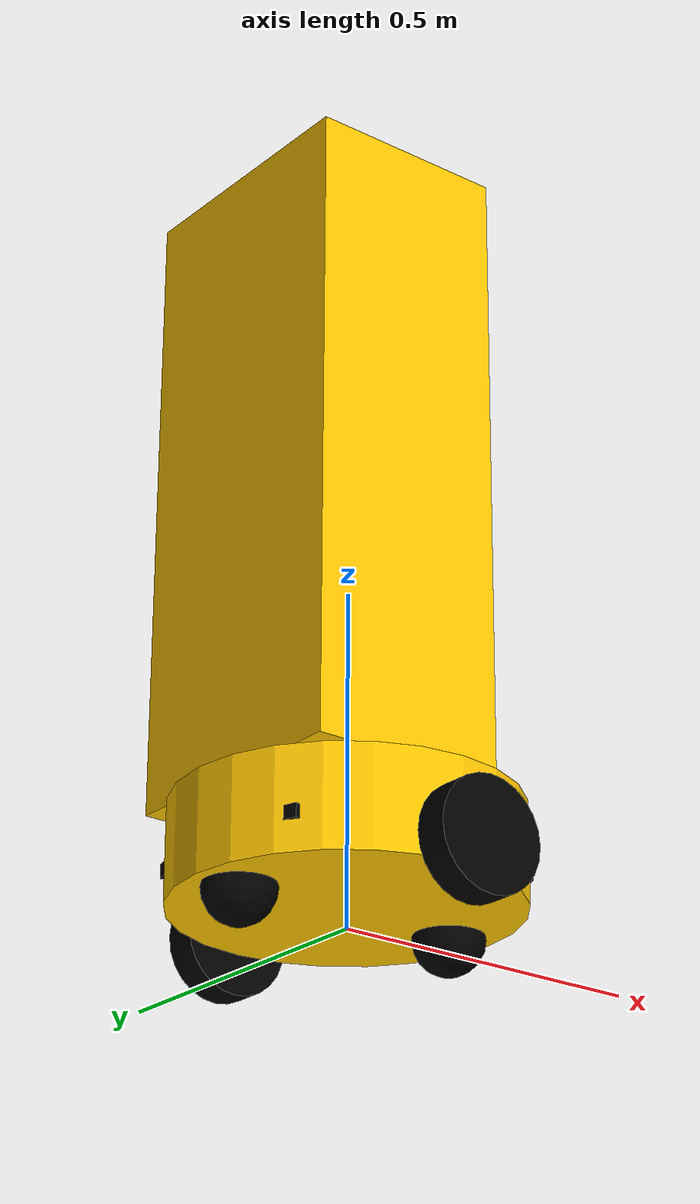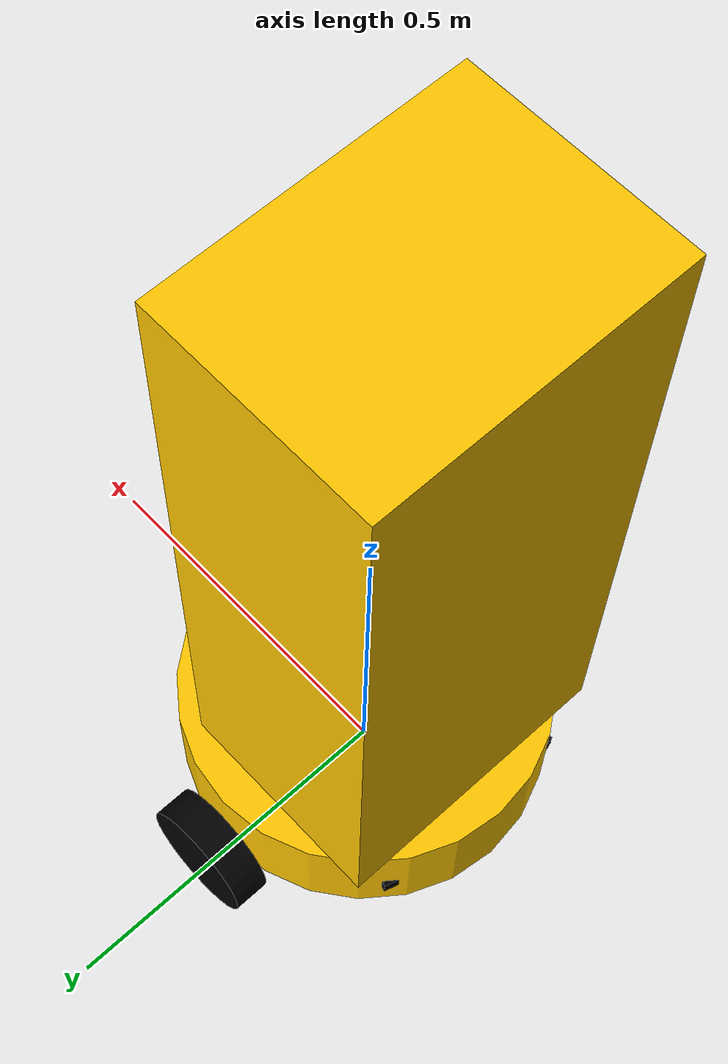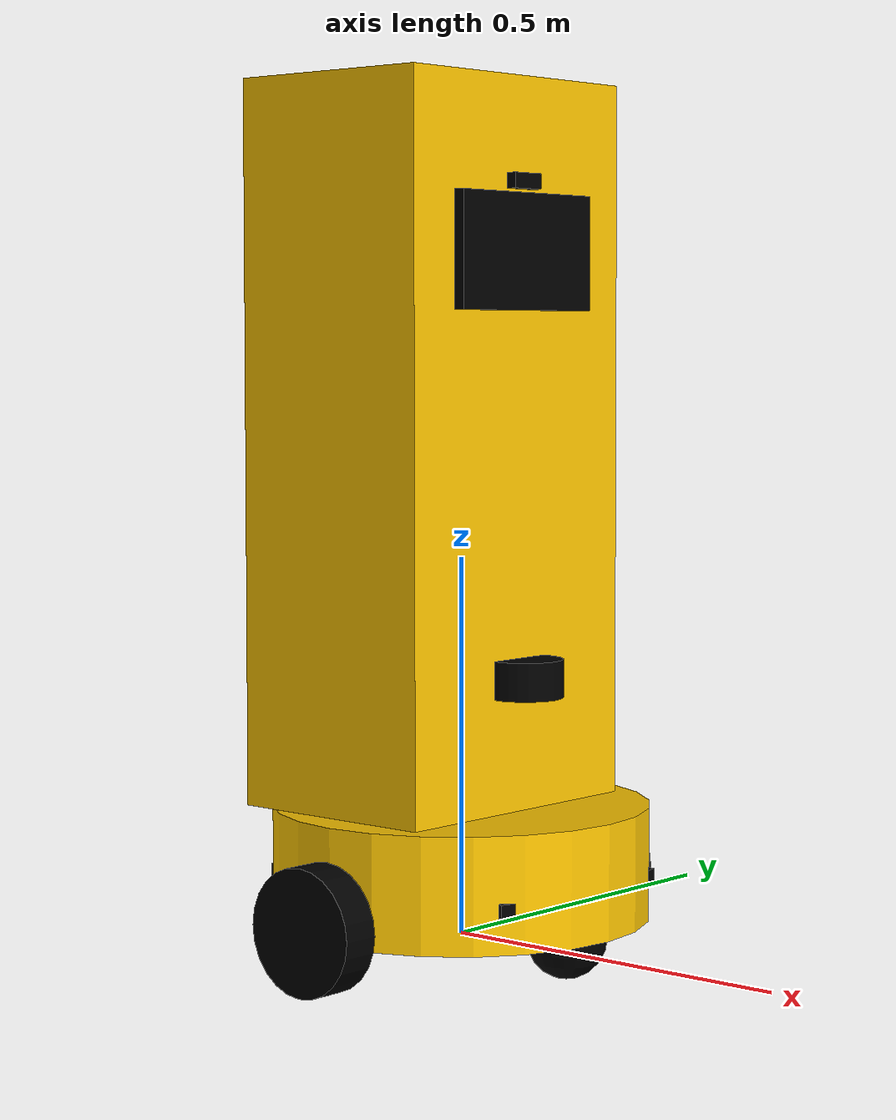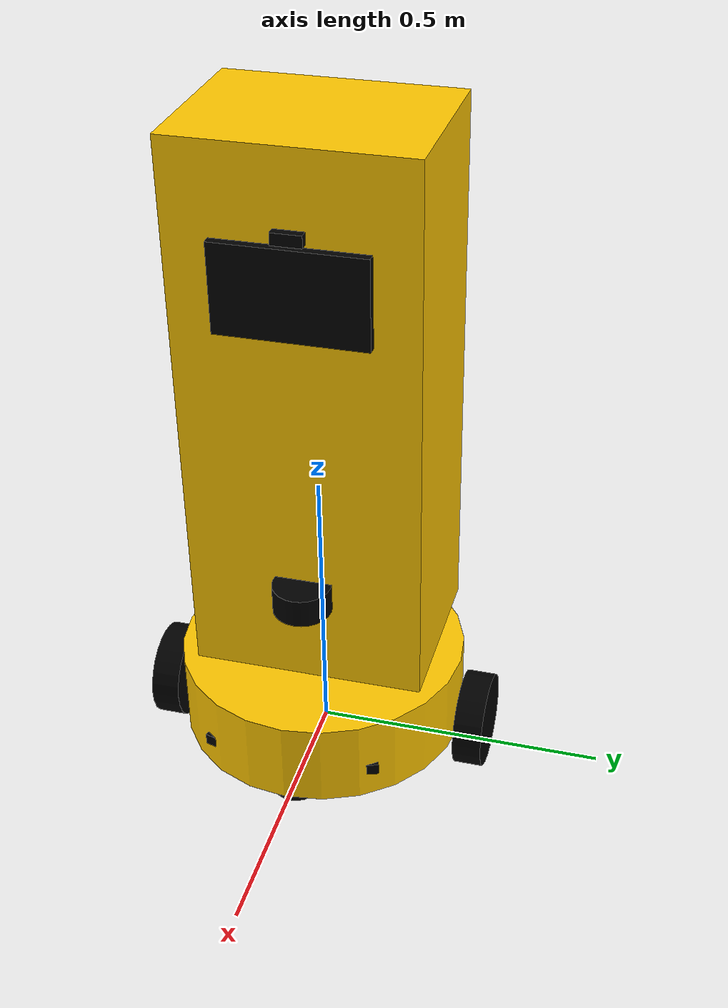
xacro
<?xml version="1.0"?>
<robot xmlns:xacro="http://www.ros.org/wiki/xacro" name="cryvex">

  <!-- Malzeme Tanımlamaları -->
  <material name="white">
    <color rgba="1 1 1 1"/>
  </material>
  <material name="black">
    <color rgba="0 0 0 1"/>
  </material>
  <!-- Bumblebee sarısı: govde/kaporta bu renkte, teker/gozde/sensor/ekran siyah kaliyor -->
  <material name="bee_yellow">
    <color rgba="1.0 0.78 0.0 1"/>
  </material>

  <!-- Base Footprint -->
  <link name="base_footprint"/>

  <!-- Base Link (Alt Gövde) -->
  <joint name="base_joint" type="fixed">
    <parent link="base_footprint"/>
    <child link="base_link"/>
    <origin xyz="0 0 0.1" rpy="0 0 0"/>
  </joint>

  <link name="base_link">
    <visual>
      <geometry><cylinder radius="0.25" length="0.15"/></geometry>
      <material name="bee_yellow"/>
    </visual>
    <collision>
      <geometry><cylinder radius="0.25" length="0.15"/></geometry>
    </collision>
    <inertial>
      <mass value="15.0"/>
      <inertia ixx="0.26" ixy="0.0" ixz="0.0" iyy="0.26" iyz="0.0" izz="0.46"/>
    </inertial>
  </link>
  <gazebo reference="base_link"><material>Gazebo/Yellow</material></gazebo>

  <!-- Gövde ve Raflar (Body) -->
  <joint name="body_joint" type="fixed">
    <parent link="base_link"/>
    <child link="body_link"/>
    <origin xyz="-0.05 0 0.55" rpy="0 0 0"/>
  </joint>

  <link name="body_link">
    <visual>
      <geometry><box size="0.3 0.4 0.95"/></geometry>
      <material name="bee_yellow"/>
    </visual>
    <collision>
      <geometry><box size="0.3 0.4 0.95"/></geometry>
    </collision>
    <inertial>
      <mass value="5.0"/>
      <inertia ixx="0.4" ixy="0.0" ixz="0.0" iyy="0.4" iyz="0.0" izz="0.06"/>
    </inertial>
  </link>
  <gazebo reference="body_link"><material>Gazebo/Yellow</material></gazebo>

  <!-- Ekran (Tablet Bölümü - Göğüs Yüzeyine Yapışık) -->
  <joint name="head_joint" type="fixed">
    <parent link="body_link"/>
    <child link="head_link"/>
    <!-- Gövdenin tam ön yüzeyine (x=0.155) yapıştırıldı ve üst kısımdan biraz aşağıya (z=0.25) hizalandı -->
    <origin xyz="0.155 0 0.25" rpy="0 0 0"/>
  </joint>

  <link name="head_link">
    <visual>
      <!-- Tablet kalınlığı 2 cm (0.02), genişlik 25 cm, yükseklik 15 cm -->
      <geometry><box size="0.02 0.25 0.15"/></geometry>
      <material name="black"/>
    </visual>
    <collision>
      <geometry><box size="0.02 0.25 0.15"/></geometry>
    </collision>
    <inertial>
      <mass value="0.5"/>
      <inertia ixx="0.001" ixy="0.0" ixz="0.0" iyy="0.001" iyz="0.0" izz="0.001"/>
    </inertial>
  </link>
  <gazebo reference="head_link"><material>Gazebo/Black</material></gazebo>

  <!-- Sağ ve Sol Motor Tekerlekleri (BLDC Hub) -->
  <xacro:macro name="wheel" params="prefix y_reflect">
    <joint name="${prefix}_wheel_joint" type="continuous">
      <parent link="base_link"/>
      <child link="${prefix}_wheel"/>
      <origin xyz="0 ${y_reflect * 0.28} -0.05" rpy="-1.5707 0 0"/>
      <axis xyz="0 0 1"/>
    </joint>

    <link name="${prefix}_wheel">
      <visual>
        <geometry><cylinder radius="0.0825" length="0.05"/></geometry>
        <material name="black"/>
      </visual>
      <collision>
        <geometry><cylinder radius="0.0825" length="0.05"/></geometry>
      </collision>
      <inertial>
        <mass value="2.0"/>
        <inertia ixx="0.003" ixy="0.0" ixz="0.0" iyy="0.003" iyz="0.0" izz="0.006"/>
      </inertial>
    </link>
    <gazebo reference="${prefix}_wheel"><material>Gazebo/Black</material></gazebo>
  </xacro:macro>

  <xacro:wheel prefix="left" y_reflect="1"/>
  <xacro:wheel prefix="right" y_reflect="-1"/>

  <!-- Sarhoş Tekerlekler (Caster Wheels) -->
  <xacro:macro name="caster" params="prefix x_offset">
    <joint name="${prefix}_caster_joint" type="fixed">
      <parent link="base_link"/>
      <child link="${prefix}_caster"/>
      <origin xyz="${x_offset} 0 -0.08" rpy="0 0 0"/>
    </joint>

    <link name="${prefix}_caster">
      <visual>
        <geometry><sphere radius="0.0525"/></geometry>
        <material name="black"/>
      </visual>
      <collision>
        <geometry><sphere radius="0.0525"/></geometry>
      </collision>
      <inertial>
        <mass value="0.5"/>
        <inertia ixx="0.0005" ixy="0" ixz="0" iyy="0.0005" iyz="0" izz="0.0005"/>
      </inertial>
    </link>

    <gazebo reference="${prefix}_caster">
      <material>Gazebo/Black</material>
      <mu1>0.0</mu1>
      <mu2>0.0</mu2>
    </gazebo>
  </xacro:macro>

  <xacro:caster prefix="front" x_offset="0.18"/>
  <xacro:caster prefix="rear" x_offset="-0.18"/>

  <!-- Gazebo Diferansiyel Sürüş Eklentisi -->
  <gazebo>
    <plugin name="diff_drive" filename="libgazebo_ros_diff_drive.so">
      <ros>
        <namespace>/</namespace>
      </ros>
      <update_rate>50</update_rate>
      <left_joint>left_wheel_joint</left_joint>
      <right_joint>right_wheel_joint</right_joint>
      <wheel_separation>0.56</wheel_separation>
      <wheel_diameter>0.165</wheel_diameter>
      <max_wheel_torque>20</max_wheel_torque>
      <max_wheel_acceleration>1.0</max_wheel_acceleration>
      <publish_odom>true</publish_odom>
      <publish_odom_tf>true</publish_odom_tf>
      <publish_wheel_tf>true</publish_wheel_tf>
      <odometry_frame>odom</odometry_frame>
      <robot_base_frame>base_footprint</robot_base_frame>
    </plugin>
  </gazebo>

  <!-- ================= SENSÖRLER ================= -->

  <!-- 3D LiDAR (Unitree 4D L1 Temsili) -->
  <joint name="lidar_joint" type="fixed">
    <parent link="body_link"/>
    <child link="lidar_link"/>
    <!-- ÖNEMLİ DEĞİŞİKLİK: Lidar gövdenin ön yüzeyine (x=0.16) ve yere daha yakın bir hizaya (z=-0.3) alındı -->
    <origin xyz="0.16 0 -0.3" rpy="0 0 0"/>
  </joint>

  <link name="lidar_link">
    <visual>
      <geometry><cylinder radius="0.05" length="0.05"/></geometry>
      <material name="black"/>
    </visual>
    <collision>
      <geometry><cylinder radius="0.05" length="0.05"/></geometry>
    </collision>
    <inertial>
      <mass value="0.2"/>
      <inertia ixx="0.0001" ixy="0" ixz="0" iyy="0.0001" iyz="0" izz="0.0001"/>
    </inertial>
  </link>

  <!-- Gazebo 3D LiDAR (PointCloud2) Eklentisi -->
  <gazebo reference="lidar_link">
    <material>Gazebo/DarkGrey</material>
    <sensor type="ray" name="lidar_sensor">
      <pose>0 0 0 0 0 0</pose>
      <visualize>false</visualize> <!-- Gazebo'da mavi çizgileri görmek istersen true yap -->
      <update_rate>10</update_rate>
      <ray>
        <scan>
          <horizontal>
            <!-- Örnek sayısını yarıya düşürdük (180 derece için 180 örnek) -->
            <samples>180</samples>
            <resolution>1</resolution>
            <!-- AÇILARI 180 DERECEYE KISTIK (-90 ile +90 arası) -->
            <min_angle>-1.5707</min_angle>
            <max_angle>1.5707</max_angle>
          </horizontal>
          <vertical>
            <samples>16</samples>
            <resolution>1</resolution>
            <!-- AÇIYI GERİ VERDİK: Artık aşağıya doğru da 3D tarama yapabilir -->
            <min_angle>-0.26</min_angle>
            <max_angle>0.26</max_angle>
          </vertical>
        </scan>
        <range>
          <min>0.15</min>
          <max>20.0</max>
          <resolution>0.01</resolution>
        </range>
      </ray>
      <plugin name="lidar_plugin" filename="libgazebo_ros_ray_sensor.so">
        <ros>
          <namespace>/</namespace>
          <remapping>~/out:=points</remapping>
        </ros>
        <output_type>sensor_msgs/PointCloud2</output_type>
        <frame_name>lidar_link</frame_name>
      </plugin>
    </sensor>
  </gazebo>

  <!-- ============ 4x HC-SR04 Ultrasonik (kurtulma manevrası için) ============ -->
  <xacro:macro name="sonar" params="name x y yaw">
    <joint name="sonar_${name}_joint" type="fixed">
      <parent link="base_link"/>
      <child link="sonar_${name}_link"/>
      <origin xyz="${x} ${y} -0.02" rpy="0 0 ${yaw}"/>
    </joint>
    <link name="sonar_${name}_link">
      <visual>
        <geometry><box size="0.02 0.045 0.02"/></geometry>
        <material name="black"/>
      </visual>
    </link>
    <gazebo reference="sonar_${name}_link">
      <material>Gazebo/Black</material>
      <sensor type="ray" name="sonar_${name}">
        <pose>0 0 0 0 0 0</pose>
        <visualize>true</visualize>
        <update_rate>15</update_rate>
        <ray>
          <scan>
            <horizontal><samples>11</samples><resolution>1</resolution>
              <min_angle>-0.35</min_angle><max_angle>0.35</max_angle></horizontal>
            <vertical><samples>5</samples><resolution>1</resolution>
              <min_angle>-0.06</min_angle><max_angle>0.06</max_angle></vertical>
          </scan>
          <range><min>0.02</min><max>0.60</max><resolution>0.01</resolution></range>
        </ray>
        <plugin name="sonar_${name}_plugin" filename="libgazebo_ros_ray_sensor.so">
          <ros>
            <namespace>/</namespace>
            <remapping>~/out:=ultrasonic/${name}</remapping>
          </ros>
          <output_type>sensor_msgs/Range</output_type>
          <frame_name>sonar_${name}_link</frame_name>
        </plugin>
      </sensor>
    </gazebo>
  </xacro:macro>

  <!-- FL(+17°) ve FR(-17°) huzmeleri (±20°) tam onde ust uste biner -> kor nokta yok.
       Ayni mantik RL/RR ile tam arkada da gecerli. -->
  <xacro:sonar name="fl" x="0.20"  y="0.13"  yaw="0.30"/>   <!-- ön-sol  ~+17° -->
  <xacro:sonar name="fr" x="0.20"  y="-0.13" yaw="-0.30"/>  <!-- ön-sağ  ~-17° -->
  <xacro:sonar name="rl" x="-0.20" y="0.13"  yaw="2.84"/>   <!-- arka-sol ~+163° -->
  <xacro:sonar name="rr" x="-0.20" y="-0.13" yaw="-2.84"/>  <!-- arka-sağ ~-163° -->

  <!-- Kamera (Tablet Üzeri) -->
  <joint name="camera_joint" type="fixed">
    <parent link="body_link"/>
    <child link="camera_link"/>
    <!-- Tabletin (z=0.25) hemen üstüne (z=0.34) hizalandı -->
    <origin xyz="0.155 0 0.34" rpy="0 0 0"/>
  </joint>

  <link name="camera_link">
    <visual>
      <geometry><box size="0.02 0.05 0.02"/></geometry>
      <material name="black"/>
    </visual>
  </link>

  <!-- Gazebo Kamera Eklentisi -->
  <gazebo reference="camera_link">
    <material>Gazebo/Black</material>
    <sensor type="camera" name="camera_sensor">
      <pose>0 0 0 0 0 0</pose>
      <visualize>true</visualize>
      <update_rate>30.0</update_rate>
      <camera>
        <horizontal_fov>1.089</horizontal_fov>
        <image>
          <width>640</width>
          <height>480</height>
          <format>R8G8B8</format>
        </image>
        <clip>
          <near>0.05</near>
          <far>100</far>
        </clip>
      </camera>
      <plugin name="camera_plugin" filename="libgazebo_ros_camera.so">
        <ros>
          <namespace>/</namespace>
        </ros>
        <camera_name>tablet_camera</camera_name>
        <frame_name>camera_link</frame_name>
      </plugin>
    </sensor>
  </gazebo>

</robot>
